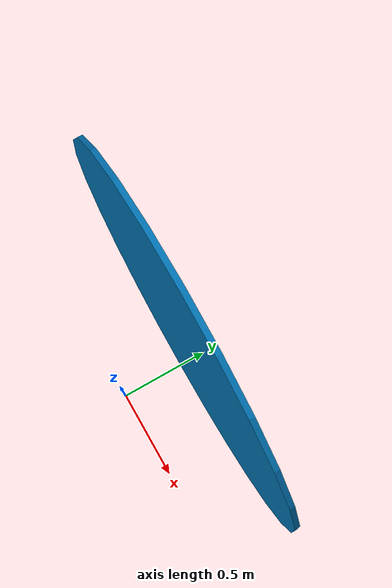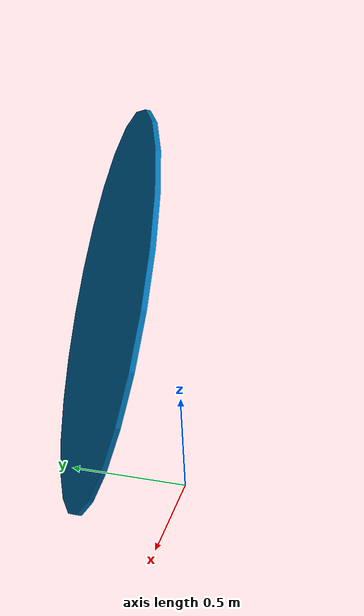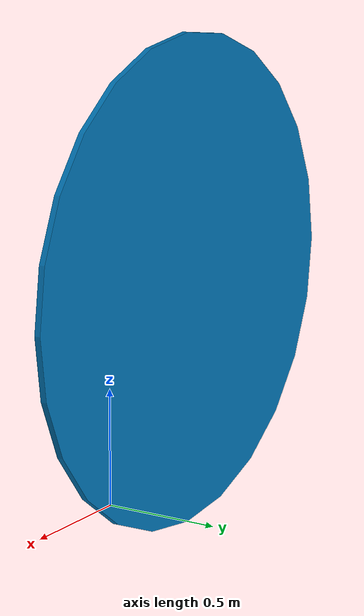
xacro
<?xml version="1.0"?>
<robot xmlns:xacro="http://www.ros.org/wiki/xacro" name="one">
  <xacro:property name="chassis_length" value="1.5" />
  <xacro:property name="chassis_height" value="0.85" />
  <xacro:property name="chassis_width" value="0.75" />
  <xacro:property name="axle_to_rear" value="0.8" />
  <xacro:property name="axle_to_front" value="0.44" />
  <xacro:property name="track" value="0.73" />
  <xacro:property name="wheel_radius" value="1" />
  <xacro:property name="wheel_width" value="0.025" />

  <xacro:include filename="$(find cob_description)/urdf/common.xacro" />
  <xacro:include filename="$(find kacanopen)/ros_bridge/launch/wheel.urdf.xacro" />

  <xacro:macro name="one" params="name">

    <link name="${name}_footprint" />

    <!-- base_footprint is a fictitious link(frame) that is on the ground right below base_link origin,
         navigation stack dedpends on this frame -->
    <joint name="${name}_footprint_joint" type="fixed">
      <origin xyz="0 0 0" rpy="0 0 0" />
      <parent link="${name}_footprint" />
      <child link="${name}_link" />
    </joint>
    <link name="${name}_link" />

    <joint name="${name}_center_joint" type="fixed">
      <origin xyz="${-(chassis_length - axle_to_front)/2} 0 ${chassis_height/2}" rpy="0 0 0" />
      <parent link="${name}_link" />
      <child link="${name}_center" />
    </joint>

    <link name="${name}_center" />

    <joint name="${name}_main_axle_joint" type="fixed">
      <origin xyz="0 0 ${wheel_radius}" rpy="0 0 0" />
      <child link="${name}_main_axle_link" />
      <parent link="${name}_link" />
    </joint>

    <link name="${name}_main_axle_link" />

    <xacro:wheel wheel_prefix="test" reduction_multiplier="1" radius="${wheel_radius}" width="${wheel_width}">
      <origin xyz="0 ${track/2} 0" rpy="0 0 0" />
    </xacro:wheel>

    <joint name="${name}_caster_wheel_joint" type="fixed">
      <origin xyz="${-axle_to_rear} 0 0" rpy="0 0 0" />
      <child link="${name}_caster_wheel_link" />
      <parent link="${name}_main_axle_link" />
    </joint>

    <link name="${name}_caster_wheel_link" />

    <gazebo>
      <plugin name="gazebo_ros_control" filename="libgazebo_ros_control.so">
        <robotNamespace>${name}</robotNamespace>
      </plugin>
    </gazebo>
  </xacro:macro>

  <xacro:one name="base" />

</robot>

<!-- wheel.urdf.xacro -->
<robot xmlns:xacro="http://www.ros.org/wiki/xacro" name="wheel">

  <xacro:macro name="wheel" params="wheel_prefix reduction_multiplier radius width *origin">
    <link name="${name}_${wheel_prefix}_wheel_link">
    <xacro:cylinder_inertial radius="${radius}" length="${width}" mass="0.5">
      <origin xyz="0 0 0" rpy="${M_PI/2} 0 0" />
    </xacro:cylinder_inertial>
    <visual>
      <origin xyz="0 0 0" rpy="${M_PI/2} 0 0" />
      <geometry>
        <cylinder radius="${radius}" length="${width}" />
      </geometry>
    </visual>
    <collision>
      <origin xyz="0 0 0" rpy="${M_PI/2} 0 0" />
      <geometry>
        <cylinder radius="${radius}" length="${width}" />
      </geometry>
    </collision>
    </link>

    <gazebo reference="${name}_${wheel_prefix}_wheel_link">
      <mu1 value="1.0" />
      <mu2 value="1.0" />
      <kp value="10000000.0" />
      <kd value="1.0" />
      <fdir1 value="1 0 0" />
    </gazebo>

    <joint name="${name}_${wheel_prefix}_wheel_joint" type="continuous">
      <parent link="${name}_main_axle_link" />
      <child link="${name}_${wheel_prefix}_wheel_link" />
      <xacro:insert_block name="origin" />
      <axis xyz="0 1 0" rpy="0 0 0" />
    </joint>

    <transmission name="${wheel_prefix}_wheel_trans" type="SimpleTransmission">
      <type>transmission_interface/SimpleTransmission</type>
      <actuator name="${wheel_prefix}_wheel_motor">
        <mechanicalReduction>${reduction_multiplier}</mechanicalReduction>
      </actuator>
      <joint name="${name}_${wheel_prefix}_wheel_joint">
        <hardwareInterface>hardware_interface/VelocityJointInterface</hardwareInterface>
      </joint>
    </transmission>

  </xacro:macro>
</robot>
